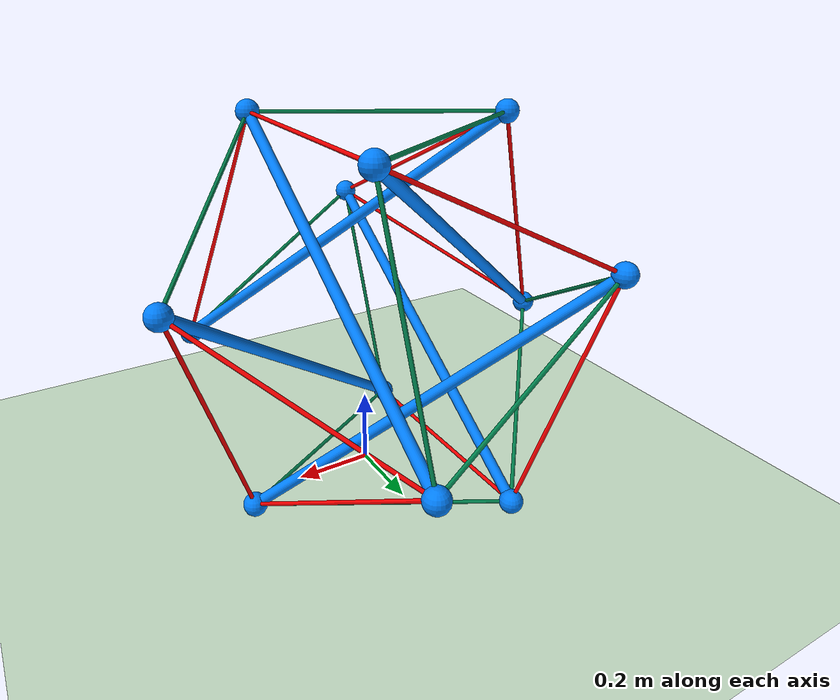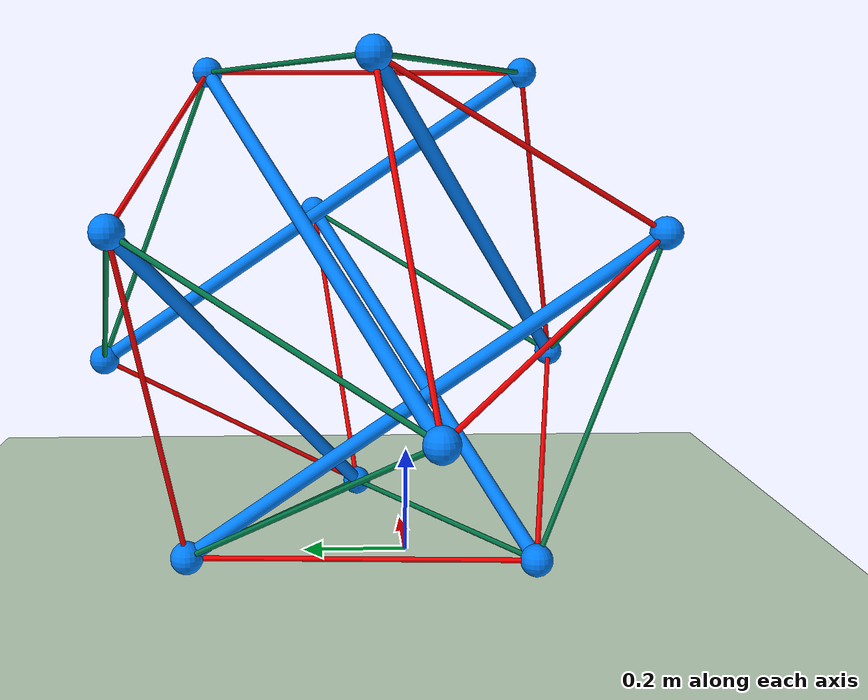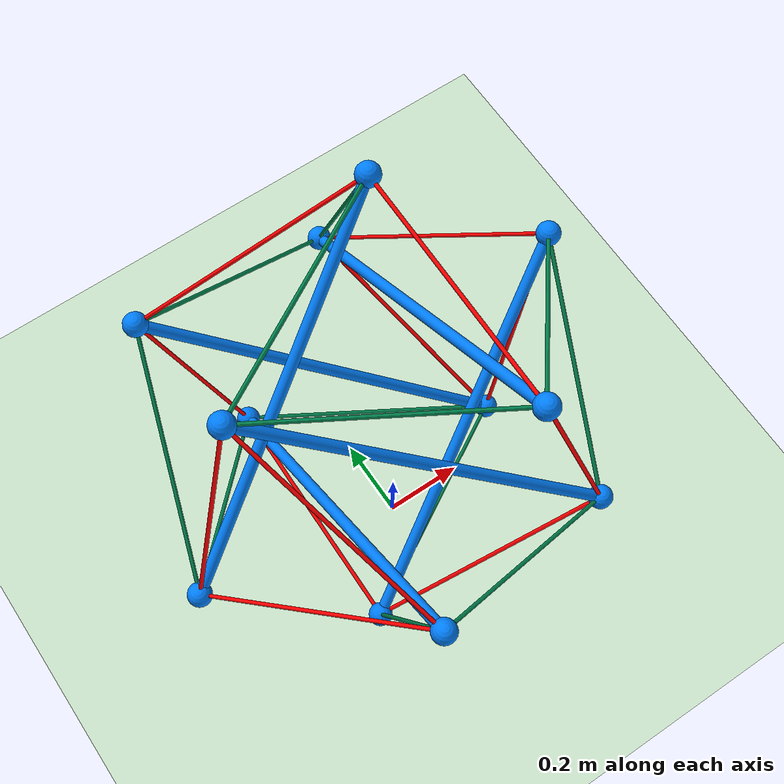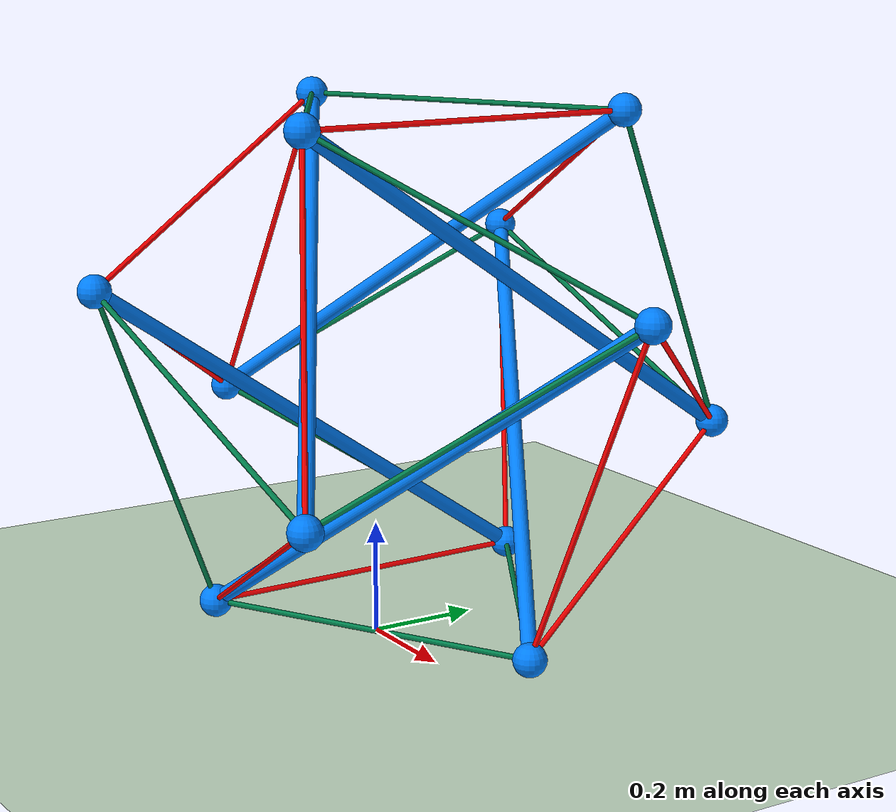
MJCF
<mujoco model="Tensegrity_6bar (v2.1)">
	<compiler angle="degree" inertiafromgeom="true"/>

	<option timestep="0.01" iterations="50" integrator="RK4" solver="PGS"  >
		<flag passive="disable" />
	</option>

	<default>
		<joint armature="1" damping="1"/>
    <geom conaffinity="1" condim="4" contype="1" material="geom" margin="0.001" rgba="0. 0.5 0.99 1"/>
		<site type="sphere" size="0.005"/>
    <tendon limited="true" range="0.1 0.8" width="0.005" rgba="0.99 0. 0. 1"  stiffness="1" damping="0.5"/>
		<general gear="10000" biastype="affine" biasprm="0 0 0" dyntype="filter" dynprm="5 0 0" gainprm="1 0 0" ctrllimited="true" ctrlrange="-3. 3." />
	</default>

	<asset>
			<texture builtin="gradient" height="100" rgb1=".4 .5 .6" rgb2="0 0 0" type="skybox" width="100"/>
			<texture builtin="flat" height="1278" mark="cross" markrgb="1 1 1" name="texgeom" random="0.01" rgb1="0.8 0.6 0.4" rgb2="0.8 0.6 0.4" type="cube" width="127"/>
			<texture builtin="checker" height="100" name="texplane" rgb1="0 0 0" rgb2="0.8 0.8 0.8" type="2d" width="100"/>
			<material name="MatPlane" reflectance="0.5" shininess="1" specular="1" texrepeat="60 60" texture="texplane"/>
			<material name="geom" texture="texgeom" texuniform="true"/>
	</asset>

	<worldbody>

		<light cutoff="100" diffuse="1 1 1" dir="-0 0 -1.3" directional="true" exponent="1" pos="0 0 1.3" specular=".1 .1 .1"/>
    <geom condim="3" friction="1 1 1" material="MatPlane" name="floor" pos="0 0 0" rgba="0.8 0.9 0.8 1" size="20 20 0.125" type="plane"/>

		<!-- ======= RODS ======= -->

		<body name="rod0_1" pos="0 0 0">
      <geom name="r01"  fromto="0.554168  0.181788  0.638605 -0.191882  -0.227347  0.0405941"  density="1000" type="cylinder" size="0.014" />
      <joint name="move0_1" type="free"/>
			<body name="rod0_1_child1">
				<geom name="r01_child1" pos="0.554168  0.181788  0.638605" density="5000" mass="5" type="sphere"  size="0.03" friction="10 0.005 0.0001"/>
				<site name="s0" pos="0.554168  0.181788  0.638605"/>
				<joint type="ball" pos="0.554168  0.181788  0.638605"/>
			</body>
			<body name="rod0_1_child2">
				<geom name="r01_child2" pos="-0.191882  -0.227347  0.0405941" density="5000" mass="5" type="sphere"  size="0.03" friction="10 0.005 0.0001"/>
				<site name="s1" pos="-0.191882  -0.227347  0.0405941" />
				<joint type="ball" pos="-0.191882  -0.227347  0.0405941"/>
			</body>
		</body>

    <body name="rod2_3" pos="0 0 0">
        <geom name="r23"  fromto="-0.186509 -0.448923  0.63765 -0.186517  0.409422 0.050415" density="1000" type="cylinder"  size="0.014"/>
        <joint name="move2_3" type="free"/>
				<body name="rod2_3_child1">
					<geom name="r23_child1" pos="-0.186509 -0.448923  0.63765" density="5000" mass="5" type="sphere"  size="0.03" friction="10 0.005 0.0001"/>
        	<site name="s2" pos="-0.186509 -0.448923  0.63765"/>
					<joint type="ball" pos="-0.186509 -0.448923  0.63765"/>
				</body>
				<body name="rod2_3_child2">
					<geom name="r23_child2" pos="-0.186517  0.409422  0.050415" density="5000" mass="5" type="sphere"  size="0.03" friction="10 0.005 0.0001"/>
					<site name="s3" pos="-0.186517  0.409422  0.050415" />
					<joint type="ball" pos="-0.186517  0.409422  0.050415"/>
				</body>
    </body>

    <body name="rod4_5" pos="0 0 0">
        <geom name="r45"  fromto="0.362289 -0.342679   0.332473 -0.362286   0.0785728  0.938215"  density="1000" type="cylinder" size="0.014"/>
        <joint name="move4_5" type="free"/>
				<body name="rod4_5_child1">
					<geom name="r45_child1" pos="0.362289 -0.342679  0.332473" density="5000" mass="5" type="sphere"  size="0.03" friction="10 0.005 0.0001"/>
					<site name="s4" pos="0.362289 -0.342679  0.332473"/>
					<joint type="ball" pos="0.362289 -0.342679  0.332473"/>
				</body>
				<body name="rod4_5_child2">
					<geom name="r45_child2" pos="-0.362286   0.0785728  0.938215" density="5000" mass="5" type="sphere"  size="0.03" friction="10 0.005 0.0001"/>
					<site name="s5" pos="-0.362286   0.0785728  0.938215"/>
					<joint type="ball" pos="-0.362286   0.0785728  0.938215"/>
				</body>
    </body>

    <body name="rod6_7" pos="0 0 0" >
        <geom name="r67"  fromto="-0.55417   -0.0167216  0.348465 0.191881  0.392414  0.936476" density="1000" type="cylinder"  size="0.014"/>
        <joint name="move6_7" type="free" />
				<body name="rod6_7_child1">
					<geom name="r67_child1" pos="-0.55417   -0.0167216  0.348465" density="5000" mass="5" type="sphere"  size="0.03" friction="10 0.005 0.0001"/>
					<site name="s6" pos="-0.55417   -0.0167216  0.348465"/>
					<joint type="ball" pos="-0.55417   -0.0167216  0.348465"/>
				</body>
				<body name="rod6_7_child2">
					<geom name="r67_child2" pos="0.191881  0.392414  0.936476" density="5000" mass="5" type="sphere"  size="0.03" friction="10 0.005 0.0001"/>
					<site name="s7" pos="0.191881  0.392414  0.936476"/>
					<joint type="ball" pos="0.191881  0.392414  0.936476"/>
				</body>
    </body>

    <body name="rod8_9" pos="0 0 0" >
        <geom name="r89"  fromto="0.186516 -0.244355  0.936655 0.186508  0.613989  0.349421" density="1000" type="cylinder"  size="0.014"/>
        <joint name="move8_9" type="free"/>
				<body name="rod8_9_child1">
					<geom name="r89_child1" pos="0.186516 -0.244355  0.936655" density="5000" mass="5" type="sphere"  size="0.03" friction="10 0.005 0.0001"/>
					<site name="s8" pos="0.186516 -0.244355  0.936655"/>
					<joint type="ball" pos="0.186516 -0.244355  0.936655"/>
				</body>
				<body name="rod8_9_child2">
					<geom name="r89_child2" pos="0.186508  0.613989  0.349421" density="5000" mass="5" type="sphere"  size="0.03" friction="10 0.005 0.0001"/>
					<site name="s9" pos="0.186508  0.613989  0.349421"/>
					<joint type="ball" pos="0.186508  0.613989  0.349421"/>
				</body>
    </body>

    <body name="rod10_11" pos="0 0 0" >
        <geom name="r1011"  fromto="0.362285    0.0864934   0.03885547 -0.36229   0.507745   0.654597"  density="1000" type="cylinder"  size="0.014"/>
        <joint name="move10_11" type="free"/>
				<body name="rod10_11_child1">
					<geom name="r1011_child1" pos="0.362285    0.0864934   0.03885547" density="5000" mass="5" type="sphere"  size="0.03" friction="10 0.005 0.0001"/>
					<site name="s10" pos="0.362285    0.0864934   0.03885547"/>
					<joint type="ball" pos="0.362285    0.0864934   0.03885547"/>
				</body>
				<body name="rod10_11_child2">
					<geom name="r1011_child2" pos="-0.36229   0.507745   0.654597" density="5000" mass="5" type="sphere"  size="0.03" friction="10 0.005 0.0001"/>
					<site name="s11" pos="-0.36229   0.507745   0.654597"/>
					<joint type="ball" pos="-0.36229   0.507745   0.654597"/>
				</body>
    </body>

	</worldbody>

    <!-- TENDONS -->

	<tendon>
        <spatial name="td_0">
            <site site="s0"/>
            <site site="s10"/>
        </spatial>
        <spatial  name="td_1">
            <site site="s1"/>
            <site site="s4"/>
        </spatial>
        <spatial  name="td_2">
            <site site="s2"/>
            <site site="s6"/>
        </spatial>
        <spatial  name="td_3">
            <site site="s3"/>
            <site site="s1"/>
        </spatial>
        <spatial  name="td_4">
            <site site="s4"/>
            <site site="s8"/>
        </spatial>
        <spatial  name="td_5">
            <site site="s5"/>
            <site site="s2"/>
        </spatial>
        <spatial  name="td_6">
            <site site="s6"/>
            <site site="s5"/>
        </spatial>
        <spatial  name="td_7">
            <site site="s7"/>
            <site site="s11"/>
        </spatial>
        <spatial  name="td_8">
            <site site="s8"/>
            <site site="s7"/>
        </spatial>
        <spatial  name="td_9">
            <site site="s9"/>
            <site site="s0"/>
        </spatial>
        <spatial  name="td_10">
            <site site="s10"/>
            <site site="s9"/>
        </spatial>
        <spatial  name="td_11">
            <site site="s11"/>
            <site site="s3"/>
        </spatial>
        <spatial  name="td_12" rgba="0 .5 .3 1" range="0.1 0.6">
            <site site="s0"/>
            <site site="s8"/>
        </spatial>
        <spatial  name="td_13" rgba="0 .5 .3 1" range="0.1 0.6">
            <site site="s0"/>
            <site site="s4"/>
        </spatial>
        <spatial  name="td_14" rgba="0 .5 .3 1" range="0.1 0.6">
            <site site="s10"/>
            <site site="s1"/>
        </spatial>
        <spatial  name="td_15" rgba="0 .5 .3 1" range="0.1 0.6">
            <site site="s10"/>
            <site site="s3"/>
        </spatial>
        <spatial  name="td_16" rgba="0 .5 .3 1" range="0.1 0.6">
            <site site="s9"/>
            <site site="s11"/>
        </spatial>
        <spatial  name="td_17" rgba="0 .5 .3 1" range="0.1 0.6">
            <site site="s9"/>
            <site site="s7"/>
        </spatial>
        <spatial  name="td_18" rgba="0 .5 .3 1" range="0.1 0.6" >
            <site site="s2"/>
            <site site="s4"/>
        </spatial>
        <spatial  name="td_19" rgba="0 .5 .3 1" range="0.1 0.6">
            <site site="s2"/>
            <site site="s1"/>
        </spatial>
        <spatial  name="td_20" rgba="0 .5 .3 1" range="0.1 0.6">
            <site site="s6"/>
            <site site="s3"/>
        </spatial>
        <spatial  name="td_21" rgba="0 .5 .3 1" range="0.1 0.6">
            <site site="s6"/>
            <site site="s11"/>
        </spatial>
        <spatial  name="td_22" rgba="0 .5 .3 1" range="0.1 0.6">
            <site site="s5"/>
            <site site="s7"/>
        </spatial>
        <spatial  name="td_23" rgba="0 .5 .3 1" range="0.1 0.6">
            <site site="s5"/>
            <site site="s8"/>

        </spatial>
	</tendon>

    <!-- ACTUATION -->

 <actuator>
    <general name="motor_td_0" tendon="td_0"/>
    <general name="motor_td_1" tendon="td_1"/>
    <general name="motor_td_2" tendon="td_2"/>
    <general name="motor_td_3" tendon="td_3"/>
    <general name="motor_td_4" tendon="td_4"/>
    <general name="motor_td_5" tendon="td_5"/>
    <general name="motor_td_6" tendon="td_6"/>
    <general name="motor_td_7" tendon="td_7"/>
    <general name="motor_td_8" tendon="td_8"/>
    <general name="motor_td_9" tendon="td_9"/>
    <general name="motor_td_10" tendon="td_10"/>
    <general name="motor_td_11" tendon="td_11"/>
    <general name="motor_td_12" tendon="td_12"/>
    <general name="motor_td_13" tendon="td_13"/>
    <general name="motor_td_14" tendon="td_14"/>
    <general name="motor_td_15" tendon="td_15"/>
    <general name="motor_td_16" tendon="td_16"/>
    <general name="motor_td_17" tendon="td_17"/>
    <general name="motor_td_18" tendon="td_18"/>
    <general name="motor_td_19" tendon="td_19"/>
    <general name="motor_td_20" tendon="td_20"/>
    <general name="motor_td_21" tendon="td_21"/>
    <general name="motor_td_22" tendon="td_22"/>
    <general name="motor_td_23" tendon="td_23"/>
</actuator>

</mujoco>
